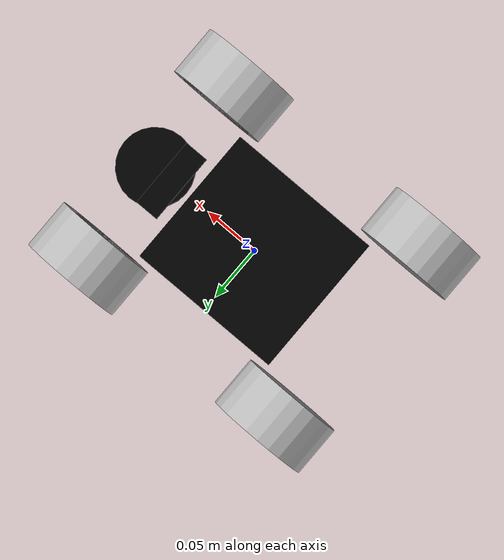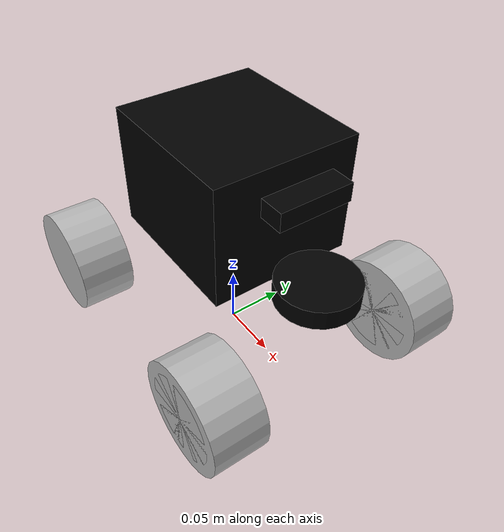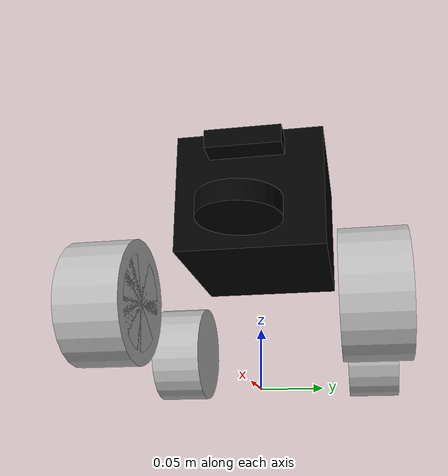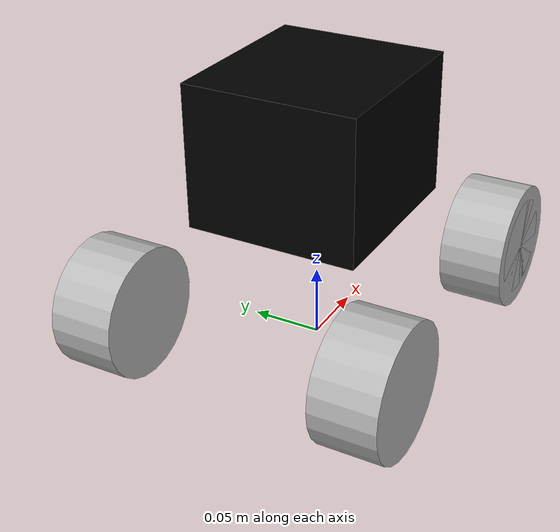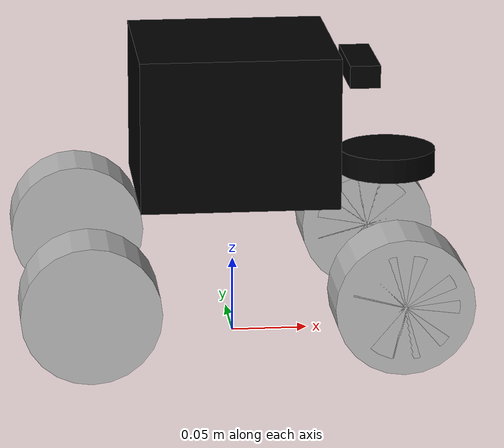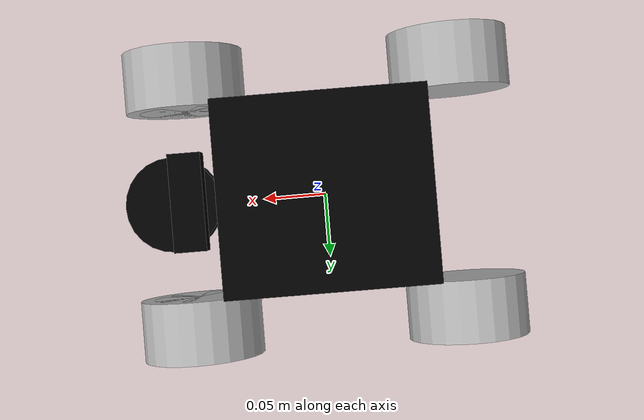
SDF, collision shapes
<?xml version="1.0"?>
<sdf version="1.9">
    <model name="limo">
        <link name="base_footprint">
            <inertial>
                <pose>0.007904637 0 0.14940820 0 0 0</pose>
                <mass>2.3657</mass>
                <inertial>
                    <ixx>0.240306</ixx>
                    <ixy>0</ixy>
                    <ixz>8.713350</ixz>
                    <iyy>0.961925</iyy>
                    <iyz>0</iyz>
                    <izz>0.961620</izz>
                </inertial>
            </inertial>
            <collision name="base_footprinnt_fixed_joint_lump__base_link_collision">
                <pose>0 0 0.15 0 0 0</pose>
                <geometry>
                    <box>
                        <size>0.13 0.12 0.1</size>
                    </box>
                </geometry>
            </collision>
                <collision name="base_footprinnt_fixed_joint_lump__depth_camera_collision_collision1">
                <pose>0.084 0 0.18 0 0 0</pose>
                <geometry>
                    <box>
                        <size>0.02 0.06 0.015</size>
                    </box>
                </geometry>
            </collision>
            <collision name="base_footprinnt_fixed_joint_lump__imu_collision_collision2">
                <pose>0 0 0.049999999 0 0 0</pose>
                <geometry>
                    <box>
                        <size>0.001 0.001 0.001</size>
                    </box>
                </geometry>
            </collision>
            <collision name="base_footprinnt_fixed_joint_lump__laser_collision_collision3">
                <pose>0.103 0 0.116 0 0 0</pose>
                <geometry>
                    <cylinder>
                        <length>0.016</length>
                        <radius>0.032</radius>
                    </cylinder>
                </geometry>
            </collision>
            <visual name="base_footprinnt_fixed_joint_lump__base_link_visual">
                <pose>0 0 0 0 0 1.57079</pose>
                <geometry>
                    <mesh>
                        <scale>1 1 1</scale>
                        <uri>meshes/limo_base.dae</uri>
                    </mesh>
                </geometry>
            </visual>
            <visual name="base_footprinnt_fixed_joint_lump__depth_camera_visual_visual1">
                <pose>0.084 0 0.18 0 0 0 </pose>
                <geometry>
                    <box>
                        <size>0.02 0.06 0.015</size>
                    </box>
                </geometry>
                <material>
                    <diffuse>0 0 0 1</diffuse>
                    <ambient>0 0 0 1</ambient>
                </material>
            </visual>
            <visual name="base_footprinnt_fixed_joint_lump__imu_visual_visual2">
                <pose>0 0 0.049999999 0 0 0 </pose>
                <geometry>
                    <box>
                        <size>0.001 0.001 0.001</size>
                    </box>
                </geometry>
                <material>
                    <diffuse>0 0 0 1</diffuse>
                    <ambient>0 0 0 1</ambient>
                </material>
            </visual>
            <visual name="base_footprinnt_fixed_joint_lump__laser_visual_visual3">
                <pose>0.103 0 0.116 0 0 0</pose>
                <geometry>
                    <cylinder>
                        <length>0.01</length>
                        <radius>0.02</radius>
                    </cylinder>
                </geometry>
                <material>
                    <diffuse>0 0 0 1</diffuse>
                    <ambient>0 0 0 1</ambient>
                </material>
            </visual>

            <sensor name="camera_front" type="rgbd_camera">
                <camera name="camera_front">
                    <horizontal_fov>1.3962634</horizontal_fov>
                    <lens>
                        <intrinsics>
                        <fx>26261.151116249</fx>
                        <fy>26261.151116249</fy>
                        <cx>320.5</cx>
                        <cy>240.5</cy>
                        <s>0</s>
                        </intrinsics>
                    </lens>
                    <distortion>
                        <k1>0.0</k1>
                        <k2>0.0</k2>
                        <k3>0.0</k3>
                        <p1>0.0</p1>
                        <p2>0.0</p2>
                        <center>0.5 0.5</center>
                    </distortion>
                    <image>
                        <width>640</width>
                        <height>480</height>
                        <format>R8G8B8</format>
                    </image>
                    <clip>
                        <near>0.02</near>
                        <far>300</far>
                    </clip>
                    <depth_camera>
                        <clip>
                            <near>0.1</near>
                            <far>10</far>
                        </clip>
                    </depth_camera>
                    <noise>
                        <type>gaussian</type>
                        <mean>0</mean>
                        <stddev>0.007</stddev>
                    </noise>
                </camera>
                <always_on>1</always_on>
                <update_rate>10</update_rate>
                <visualize>0</visualize>
                <topic>/limo/rgbd_camera</topic>
                <pose>0.084 0 0.18 0 -0 0</pose>
            </sensor>
            <gravity>true</gravity>
            <sensor name="imu_sensor" type="imu">
                <always_on>1</always_on>
                <update_rate>100</update_rate>
                <imu>
                    <enable_orientation>0</enable_orientation>
                    <angular_velocity>
                        <x>
                            <noise type="gaussian">
                                <mean>0</mean>
                                <stddev>0.009</stddev>
                                <bias_mean>0.00075</bias_mean>
                                <bias_stddev>0.005</bias_stddev>
                                <dynamic_bias_stddev>0.00002</dynamic_bias_stddev>
                                <dynamic_bias_correlation_time>400.0</dynamic_bias_correlation_time>
                                <precision>0.00025</precision>
                            </noise>
                        </x>
                        <y>
                            <noise type="gaussian">
                                <mean>0</mean>
                                <stddev>0.009</stddev>
                                <bias_mean>0.00075</bias_mean>
                                <bias_stddev>0.005</bias_stddev>
                                <dynamic_bias_stddev>0.00002</dynamic_bias_stddev>
                                <dynamic_bias_correlation_time>400.0</dynamic_bias_correlation_time>
                                <precision>0.00025</precision>
                            </noise>
                        </y>
                        <z>
                            <noise type="gaussian">
                                <mean>0</mean>
                                <stddev>0.009</stddev>
                                <bias_mean>0.00075</bias_mean>
                                <bias_stddev>0.005</bias_stddev>
                                <dynamic_bias_stddev>0.00002</dynamic_bias_stddev>
                                <dynamic_bias_correlation_time>400.0</dynamic_bias_correlation_time>
                                <precision>0.00025</precision>
                            </noise>
                        </z>
                    </angular_velocity>
                    <linear_acceleration>
                        <x>
                            <noise type="gaussian">
                                <mean>0</mean>
                                <stddev>0.021</stddev>
                                <bias_mean>0.05</bias_mean>
                                <bias_stddev>0.005</bias_stddev>
                                <dynamic_bias_stddev>0.000375</dynamic_bias_stddev>
                                <dynamic_bias_correlation_time>175.0</dynamic_bias_correlation_time>
                                <precision>0.005</precision>
                            </noise>
                        </x>
                        <y>
                            <noise type="gaussian">
                                <mean>0</mean>
                                <stddev>0.021</stddev>
                                <bias_mean>0.05</bias_mean>
                                <bias_stddev>0.005</bias_stddev>
                                <dynamic_bias_stddev>0.000375</dynamic_bias_stddev>
                                <dynamic_bias_correlation_time>175.0</dynamic_bias_correlation_time>
                                <precision>0.005</precision>
                            </noise>
                        </y>
                        <z>
                            <noise type="gaussian">
                                <mean>0</mean>
                                <stddev>0.021</stddev>
                                <bias_mean>0.05</bias_mean>
                                <bias_stddev>0.005</bias_stddev>
                                <dynamic_bias_stddev>0.000375</dynamic_bias_stddev>
                                <dynamic_bias_correlation_time>175.0</dynamic_bias_correlation_time>
                                <precision>0.005</precision>
                            </noise>
                        </z>
                    </linear_acceleration>
                </imu>
                <topic>/limo/imu</topic>
            </sensor>
            <sensor name="front_laser" type="gpu_lidar">
                <visualize>0</visualize>
                <update_rate>8</update_rate>
                <lidar>
                    <scan>
                        <horizontal>
                            <samples>720</samples>
                            <resolution>1</resolution>
                            <min_angle>-2.09439504</min_angle>
                            <max_angel>2.09439504</max_angel>
                        </horizontal>
                        <vertical>
                            <samples>16</samples>
                            <resolution>1</resolution>
                            <min_angle>-0.261799</min_angle>
                            <max_angel>0.261799</max_angel>
                        </vertical>
                    </scan>
                    <rang>
                        <min>0.05</min>
                        <max>8.0</max>
                        <resolution>0.01</resolution>
                    </rang>
                    <noise>
                        <type>gaussian</type>
                        <mean>0</mean>
                        <stddev>0.01</stddev>
                    </noise>
                </lidar>
                <pose>0.103 0 0.116 0 -0 0</pose>
                <topic>limo/lidar</topic>
            </sensor>
        </link>
        <joint name="left_steering_hinge_wheel" type="revolute">
            <pose relative_to="base_footprint">0.1 0.07 0.049002 0 0 0</pose>
            <parent>base_footprint</parent>
            <child>left_steering_hinge</child>
            <axis>
                <xyz>0 0 1</xyz>
                <limit>
                    <lower>-0.523598767</lower>
                    <upper>0.523598767</upper>
                    <effort>5</effort>
                    <velocity>0.5</velocity>
                </limit>
                <dynamics>
                    <damping>1</damping>
                    <friction>2</friction>
                    <spring_reference>0</spring_reference>
                    <spring_stiffness>0</spring_stiffness>
                </dynamics>
            </axis>
        </joint>
        <link name="left_steering_hinge">
            <pose relative_to="left_steering_hinge_wheel">0 0 0 0 0 0</pose>
            <inertial>
                <pose>0 0 0 0 0 0</pose>
                <mass>0.25</mass>
                <inertia>
                    <ixx>0.00525</ixx>
                    <ixy>0</ixy>
                    <ixz>0</ixz>
                    <iyy>0.00035</iyy>
                    <iyz>0</iyz>
                    <izz>0.00525</izz>
                </inertia>
            </inertial>
            <collision name="left_steering_hinge_collision">
                <pose>0 0.0225 0 1.57079632 0 0</pose>
                <geometry>
                    <cylinder>
                        <radius>0.035</radius>
                        <length>0.045</length>
                    </cylinder>
                </geometry>
            </collision>
            <visual name="left_steering_hinge_visual">
                <pose>0 0 0 0 0 0</pose>
                <geometry>
                    <cylinder>
                        <radius>0.0001</radius>
                        <length>0.0001</length>
                    </cylinder>
                </geometry>
            </visual>
        </link>
        <joint name="front_left_wheel" type="revolute">
            <pose relative_to="left_steering_hinge">0 0 0 0 0 0</pose>
            <parent>left_steering_hinge</parent>
            <child>front_left_wheel_link</child>
            <axis>
                <xyz>0 1 0</xyz>
                <limit>
                    <lower>-1e16</lower>
                    <upper>1e16</upper>
                </limit>
                <dynamics>
                    <damping>1</damping>
                    <friction>2</friction>
                    <spring_reference>0</spring_reference>
                    <spring_stiffness>0</spring_stiffness>
                </dynamics>
            </axis>
        </joint>
        <link name="front_left_wheel_link">
            <pose relative_to="front_left_wheel">0 0 0 0 0 0</pose>
            <inertial>
                <pose>0 0 0 0 0 0</pose>
                <mass>0.25</mass>
                <inertia>
                    <ixx>0.00525</ixx>
                    <ixy>0</ixy>
                    <ixz>0</ixz>
                    <iyy>0.00035</iyy>
                    <iyz>0</iyz>
                    <izz>0.00525</izz>
                </inertia>
            </inertial>
            <collision name="front_left_wheel_link_collision">
                <pose>0 0.0225 0 1.57079632 0 0</pose>
                <geometry>
                    <cylinder>
                        <radius>0.045</radius>
                        <length>0.045</length>
                    </cylinder>
                </geometry>
            </collision>
            <visual name="front_left_wheel_link_visual">
                <pose>0 0 0 0 0 0</pose>
                <geometry>
                    <mesh>
                        <scale>1 1 1</scale>
                        <uri>meshes/limo_wheel.dae</uri>
                    </mesh>
                </geometry>
            </visual>
        </link>
        <joint name="rear_left_wheel" type="revolute">
            <pose relative_to="base_footprint">-0.1 0.07 0.05 0 0 0</pose>
            <parent>base_footprint</parent>
            <child>rear_left_wheel_link</child>
            <axis>
                <xyz>0 1 0</xyz>
                <limit>
                    <lower>-1e16</lower>
                    <upper>1e16</upper>
                </limit>
                <dynamics>
                    <spring_reference>0</spring_reference>
                    <spring_stiffness>0</spring_stiffness>
                </dynamics>
            </axis>
        </joint>
        <link name="rear_left_wheel_link">
            <pose relative_to="rear_left_wheel">0 0 0 0 0 0</pose>
            <inertial>
                <pose>0 0 0 0 0 0</pose>
                <mass>0.5</mass>
                <inertia>
                    <ixx>0.01055</ixx>
                    <ixy>0</ixy>
                    <ixz>0</ixz>
                    <iyy>0.00075</iyy>
                    <iyz>0</iyz>
                    <izz>0.01055</izz>
                </inertia>
            </inertial>
            <collision name="rear_left_wheel_link_collision">
                <pose>0 0.0225 0 1.57079632 0 0</pose>
                <geometry>
                    <cylinder>
                        <radius>0.045</radius>
                        <length>0.045</length>
                    </cylinder>
                </geometry>
            </collision>
            <visual name="rear_left_wheel_link_visual">
                <pose>0 0 0 0 0 0</pose>
                <geometry>
                    <mesh>
                        <scale>1 1 1</scale>
                        <uri>meshes/limo_wheel.dae</uri>
                    </mesh>
                </geometry>
            </visual>
        </link>
        <joint name="rear_right_wheel" type="revolute">
            <pose relative_to="base_footprint">-0.1 -0.07 0.05 3.1415926 0 0</pose>
            <parent>base_footprint</parent>
            <child>rear_right_wheel_link</child>
            <axis>
                <xyz>0 -1 0</xyz>
                <limit>
                    <lower>-1e16</lower>
                    <upper>1e16</upper>
                </limit>
                <dynamics>
                    <spring_reference>0</spring_reference>
                    <spring_stiffness>0</spring_stiffness>
                </dynamics>
            </axis>
        </joint>
        <link name="rear_right_wheel_link">
            <pose relative_to="rear_right_wheel">0 0 0 0 0 0</pose>
            <inertial>
                <pose>0 0 0 0 0 0</pose>
                <mass>0.5</mass>
                <inertia>
                    <ixx>0.01055</ixx>
                    <ixy>0</ixy>
                    <ixz>0</ixz>
                    <iyy>0.00075</iyy>
                    <iyz>0</iyz>
                    <izz>0.01055</izz>
                </inertia>
            </inertial>
            <collision name="rear_right_wheel_link_collision">
                <pose>0 0.0225 0 1.57079632 0 0</pose>
                <geometry>
                    <cylinder>
                        <radius>0.045</radius>
                        <length>0.045</length>
                    </cylinder>
                </geometry>
            </collision>
            <visual name="rear_right_wheel_link_visual">
                <pose>0 0 0 0 0 0</pose>
                <geometry>
                    <mesh>
                        <scale>1 1 1</scale>
                        <uri>meshes/limo_wheel.dae</uri>
                    </mesh>
                </geometry>
            </visual>
        </link>
        <joint name="right_steering_hinge_wheel" type="revolute">
            <pose relative_to="base_footprint">0.1 -0.07 0.05 3.1415926 0 0</pose>
            <parent>base_footprint</parent>
            <child>right_steering_hinge</child>
            <axis>
                <xyz>0 0 -1</xyz>
                <limit>
                    <lower>-0.523598767</lower>
                    <upper>0.523598767</upper>
                    <effort>5</effort>
                    <velocity>0.5</velocity>
                </limit>
                <dynamics>
                    <damping>1</damping>
                    <friction>2</friction>
                    <spring_reference>0</spring_reference>
                    <spring_stiffness>0</spring_stiffness>
                </dynamics>
            </axis>
        </joint>
        <link name="right_steering_hinge">
            <pose relative_to="right_steering_hinge_wheel">0 0 0 0 0 0</pose>
            <inertial>
                <pose>0 0 0 0 0 0</pose>
                <mass>0.25</mass>
                <inertia>
                    <ixx>0.00525</ixx>
                    <ixy>0</ixy>
                    <ixz>0</ixz>
                    <iyy>0.00035</iyy>
                    <iyz>0</iyz>
                    <izz>0.00525</izz>
                </inertia>
            </inertial>
            <collision name="right_steering_hinge_collision">
                <pose>0 0.0225 0 1.57079632 0 0</pose>
                <geometry>
                    <cylinder>
                        <length>0.045</length>
                        <radius>0.035</radius>
                    </cylinder>
                </geometry>
            </collision>
            <visual name="right_steering_hinge_visual">
                <pose>0 0 0 0 0 0</pose>
                <geometry>
                    <cylinder>
                        <length>0.0001</length>
                        <radius>0.0001</radius>
                    </cylinder>
                </geometry>
            </visual>
        </link>
        <joint name="front_right_wheel" type="revolute">
            <pose relative_to="right_steering_hinge">0 0 0 0 0 0</pose>
            <parent>right_steering_hinge</parent>
            <child>front_right_wheel_link</child>
            <axis>
                <xyz>0 -1 0</xyz>
                <limit>
                    <lower>-1e16</lower>
                    <upper>1e16</upper>
                </limit>
                <dynamics>
                    <spring_reference>0</spring_reference>
                    <spring_stiffness>0</spring_stiffness>
                </dynamics>
            </axis>
        </joint>
        <link name="front_right_wheel_link">
            <pose relative_to="front_right_wheel">0 0 0 0 0 0</pose>
            <inertial>
                <pose>0 0 0 0 0 0</pose>
                <mass>0.25</mass>
                <inertia>
                    <ixx>0.00525</ixx>
                    <ixy>0</ixy>
                    <ixz>0</ixz>
                    <iyy>0.00035</iyy>
                    <iyz>0</iyz>
                    <izz>0.00525</izz>
                </inertia>
            </inertial>
            <collision name="front_right_wheel_link_collision">
                <pose>0 0.0225 0 1.57079632 0 0</pose>
                <geometry>
                    <cylinder>
                        <radius>0.045</radius>
                        <length>0.045</length>
                    </cylinder>
                </geometry>
            </collision>
            <visual name="front_right_wheel_link_visual">
                <pose>0 0 0 0 0 0</pose>
                <geometry>
                    <mesh>
                        <scale>1 1 1</scale>
                        <uri>meshes/limo_wheel.dae</uri>
                    </mesh>
                </geometry>
            </visual>
        </link>
        <static>false</static>

        <plugin filename="ignition-gazebo-ackermann-steering-system" name="ignition::gazebo::systems::AckermannSteering">
            <left_joint>front_left_wheel</left_joint>
            <left_joint>rear_left_wheel</left_joint>
            <right_joint>front_right_wheel</right_joint>
            <right_joint>rear_right_wheel</right_joint>
            <left_steering_joint>left_steering_hinge_wheel</left_steering_joint>
            <right_steering_joint>right_steering_hinge_wheel</right_steering_joint>
            <wheel_separation>0.172</wheel_separation>
            <wheel_radius>0.045</wheel_radius>
            <min_velocity>-1</min_velocity>
            <max_velocity>1</max_velocity>
            <min_acceleration>-3</min_acceleration>
            <max_acceleration>3</max_acceleration>
            <topic>limo/cmd_vel</topic>
        </plugin>
        <plugin filename="libignition-gazebo-pose-publisher-system.so" name="ignition::gazebo::systems::PosePublisher">
            <publish_link_pose>true</publish_link_pose>
            <publish_sensor_pose>true</publish_sensor_pose>
            <publish_collision_pose>false</publish_collision_pose>
            <publish_visual_pose>false</publish_visual_pose>
            <publish_nested_model_pose>false</publish_nested_model_pose>
            <use_pose_vector_msg>true</use_pose_vector_msg>
            <static_publisher>true</static_publisher>
            <static_update_frequency>1</static_update_frequency>
        </plugin>
        <plugin filename="ignition-gazebo-joint-state-publisher-system" name="ignition::gazebo::systems::JointStatePublisher">
            <topic>limo/joint_states</topic>
        </plugin>
    </model>
</sdf>
